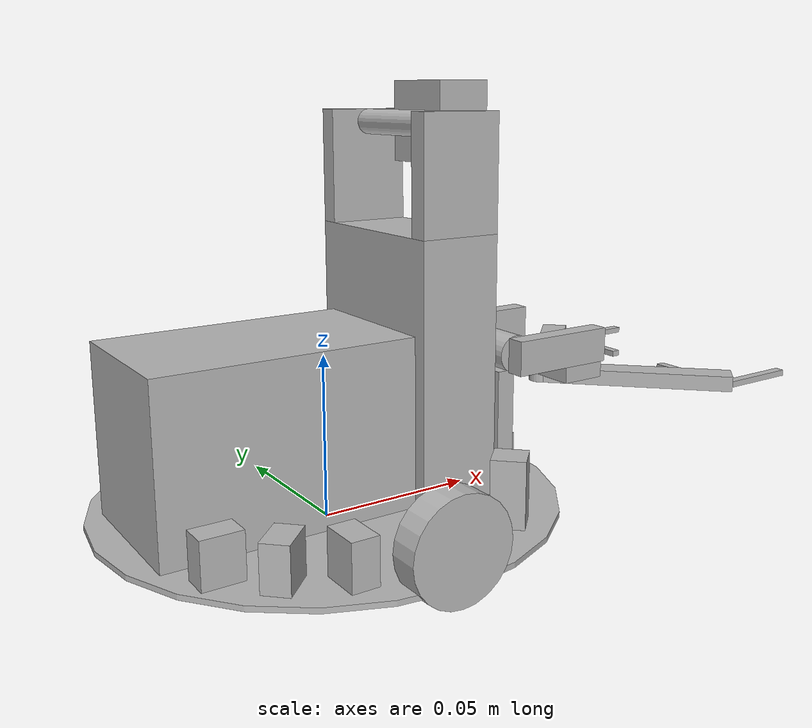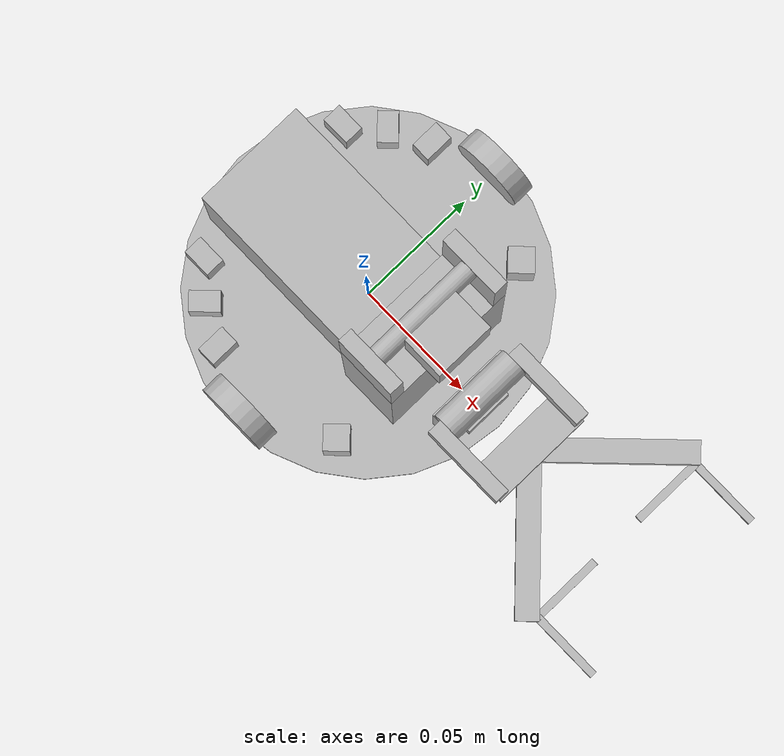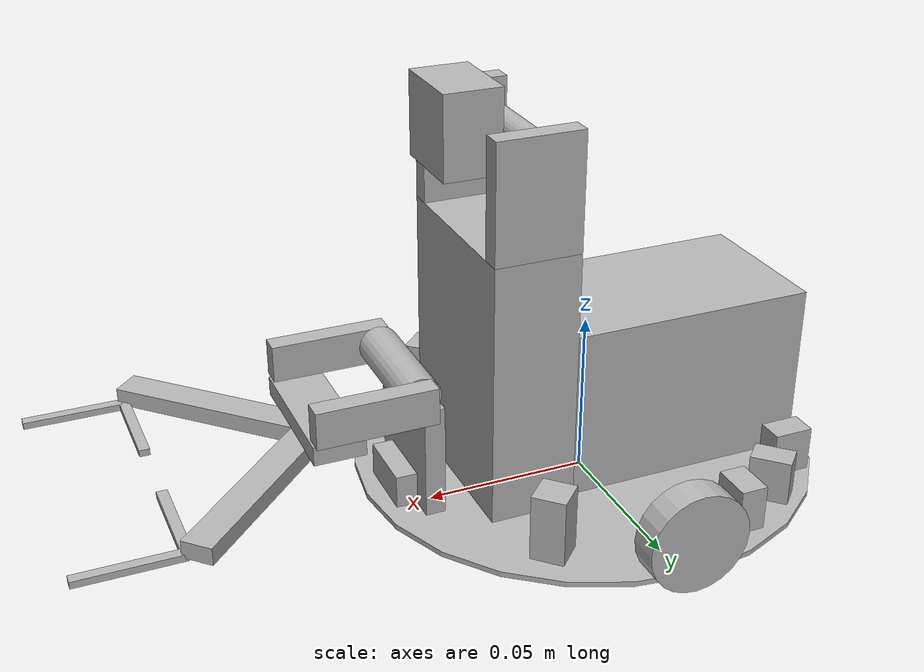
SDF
<?xml version='1.0'?>
<sdf version='1.4'>
    <model name="iti0201_robot">
      <static>false</static>

      <!-- LINK 1: Chassis, connect wheels and base to this. -->
      <link name="chassis">
        <pose>0 0 0.0152 0 0 0</pose>
      </link>

      <joint type="fixed" name="chassis_to_base">
        <pose>0 0 0 0 0 0</pose>
        <child>base</child>
        <parent>chassis</parent>
        <axis>
          <xyz>0 0 0</xyz>
        </axis>
      </joint>

      <!-- LINK 2: Base, contains caster wheels, base, brainbox and base for camera stand. -->
      <link name='base'>
        <sensor name="imu_sensor" type="imu">
          <always_on>true</always_on>
          <update_rate>100</update_rate>
          <visualize>true</visualize>
          <topic>__default_topic__</topic>
          <plugin filename="libgazebo_ros_imu_sensor.so" name="imu_plugin">
            <topicName>imu/raw</topicName>
            <bodyName>imu_link</bodyName>
            <updateRateHZ>10.0</updateRateHZ>
            <gaussianNoise>0.0</gaussianNoise>
            <xyzOffset>0 0 0</xyzOffset>
            <rpyOffset>0 0 0</rpyOffset>
            <frameName>imu_link</frameName>
          </plugin>
          <pose>0 0 0 0 0 0</pose>
        </sensor>
        <pose>0 0 .006 0 0 0</pose>

          <inertial>
            <mass>50</mass>
          </inertial>

          <collision name='base_collision'>
            <geometry>
              <cylinder>
                <radius>.069912</radius>
                <length>0.001591</length>
              </cylinder>
            </geometry>
          </collision>

          <visual name='base_visual'>
            <geometry>
              <cylinder>
                <radius>.069912</radius>
                <length>0.001591</length>
              </cylinder>
            </geometry>
          </visual>

          <collision name="brainbox_collision">
            <pose>-0.022 0 0.02641535 0 0 0</pose>
            <geometry>
              <box>
                <size>.077304 .0468221 .0512397</size>
              </box>
            </geometry>
          </collision>

          <visual name="brainbox_visual">
            <pose>-0.022 0 0.02641535 0 0 0</pose>
            <geometry>
              <box>
                <size>.077304 .0468221 .0512397</size>
              </box>
            </geometry>
          </visual>

          <collision name="camera_stand_collision">
            <pose>0.02940475 0 0.0402758 0 0 0</pose>
            <geometry>
              <box>
                <size>.0255021 .0553499 .0789606</size>
              </box>
            </geometry>
          </collision>

          <visual name="camera_stand_visual">
            <pose>0.02940475 0 0.0402758 0 0 0</pose>
            <geometry>
              <box>
                <size>.0255021 .0553499 .0789606</size>
              </box>
            </geometry>
          </visual>

          <collision name="camera_stand_right_wall_collision">
          <pose>0.02940475 -0.02467495 0.0970561 0 0 0</pose>
            <geometry>
              <box>
                <size>.0255021 .006 .0346</size>
              </box>
            </geometry>
          </collision>

          <visual name="camera_stand_right_wall_visual">
          <pose>0.02940475 -0.02467495 0.0970561 0 0 0</pose>
            <geometry>
              <box>
                <size>.0255021 .006 .0346</size>
              </box>
            </geometry>
          </visual>

          <collision name="camera_stand_left_wall_collision">
          <pose>0.02940475 0.02467495 0.0970561 0 0 0</pose>
            <geometry>
              <box>
                <size>.0255021 .006 .0346</size>
              </box>
            </geometry>
          </collision>

          <visual name="camera_stand_left_wall_visual">
          <pose>0.02940475 0.02467495 0.0970561 0 0 0</pose>
            <geometry>
              <box>
                <size>.0255021 .006 .0346</size>
              </box>
            </geometry>
          </visual>

          <collision name='front_caster_collision'>
            <pose>0.035 0 -0.001 0 0 0</pose>
            <geometry>
                <sphere>
                <radius>.004648</radius>
              </sphere>
            </geometry>

            <surface>
              <friction>
                <ode>
                  <mu>0</mu>
                  <mu2>0</mu2>
                  <slip1>1.0</slip1>
                  <slip2>1.0</slip2>
                </ode>
              </friction>
            </surface>
          </collision>

          <visual name='front_caster_visual'>
            <pose>0.035 0 -0.001 0 0 0</pose>
            <geometry>
              <sphere>
                <radius>.004648</radius>
              </sphere>
            </geometry>
          </visual>

          <collision name='rear_caster_collision'>
            <pose>-0.035 0 -0.001 0 0 0</pose>
            <geometry>
                <sphere>
                <radius>.004648</radius>
              </sphere>
            </geometry>

            <surface>
              <friction>
                <ode>
                  <mu>0</mu>
                  <mu2>0</mu2>
                  <slip1>1.0</slip1>
                  <slip2>1.0</slip2>
                </ode>
              </friction>
            </surface>
          </collision>

          <visual name='rear_caster_visual'>
            <pose>-0.035 0 -0.001 0 0 0</pose>
            <geometry>
              <sphere>
                <radius>.004648</radius>
              </sphere>
            </geometry>
          </visual>
      </link>

      <!-- LINKS 3-11: Infrareds. -->
      <link name="front_right_45deg_ir">
        <pose>0.0326151 -0.0470558 0.0167955 0 0 0.78535</pose>
        <collision name="collision">
          <geometry>
            <box>
              <size>.01 .01 .02</size>
            </box>
          </geometry>
        </collision>
        <visual name="visual">
          <geometry>
            <box>
              <size>.01 .01 .02</size>
            </box>
          </geometry>
        </visual>
        <sensor name="ir" type="ray">
          <pose>0 0 0 0 -0 -1.571</pose>
          <ray>
            <scan>
              <horizontal>
                <samples>100</samples>
                <resolution>1</resolution>
              </horizontal>
            </scan>
            <range>
              <min>0.01</min>
              <max>2.00</max>
              <resolution>0.1</resolution>
            </range>
          </ray>
          <always_on>1</always_on>
          <update_rate>30</update_rate>
          <visualize>true</visualize>
          <plugin name="ir_plugin" filename="libir_plugin.so">
            <topic>ir/front_right</topic>
          </plugin>
        </sensor>
      </link>

      <joint type="fixed" name="front_right_45deg_ir_to_base">
        <pose>0 0 0 0 0 0</pose>
        <child>front_right_45deg_ir</child>
        <parent>base</parent>
      </joint>

      <link name="front_middle_ir">
        <pose>0.059312 0 0.0117955 0 0 0</pose>
        <collision name="collision">
          <geometry>
            <box>
              <size>.01 .02 .01</size>
            </box>
          </geometry>
        </collision>
        <visual name="visual">
          <geometry>
            <box>
              <size>.01 .02 .01</size>
            </box>
          </geometry>
        </visual>
        <sensor name="ir" type="ray">
          <pose>0 0 0 0 -0 0</pose>
          <ray>
            <scan>
              <horizontal>
                <samples>100</samples>
                <resolution>1</resolution>
                <min_angle>-0.17</min_angle>
                <max_angle>0.17</max_angle>
              </horizontal>
            </scan>
            <range>
              <min>0.01</min>
              <max>2.00</max>
              <resolution>0.1</resolution>
            </range>
          </ray>
          <always_on>1</always_on>
          <update_rate>30</update_rate>
          <visualize>true</visualize>
          <plugin name="ir_plugin" filename="libir_plugin.so">
            <topic>ir/front_middle</topic>
          </plugin>
        </sensor>
      </link>

      <joint type="fixed" name="front_middle_ir_to_base">
        <pose>0 0 0 0 0 0</pose>
        <child>front_middle_ir</child>
        <parent>base</parent>
      </joint>

      <link name="front_left_45deg_ir">
        <pose>0.0326151 0.0470558 0.0167955 0 0 0.78535</pose>
        <collision name="collision">
          <geometry>
            <box>
              <size>.01 .01 .02</size>
            </box>
          </geometry>
        </collision>
        <visual name="visual">
          <geometry>
            <box>
              <size>.01 .01 .02</size>
            </box>
          </geometry>
        </visual>
        <sensor name="ir" type="ray">
          <pose>0 0 0 0 -0 0</pose>
          <ray>
            <scan>
              <horizontal>
                <samples>100</samples>
                <resolution>1</resolution>
              </horizontal>
            </scan>
            <range>
              <min>0.01</min>
              <max>2.00</max>
              <resolution>0.1</resolution>
            </range>
          </ray>
          <always_on>1</always_on>
          <update_rate>30</update_rate>
          <visualize>true</visualize>
          <plugin name="ir_plugin" filename="libir_plugin.so">
            <topic>ir/front_left</topic>
          </plugin>
        </sensor>
      </link>

      <joint type="fixed" name="front_left_45deg_ir_to_base">
        <pose>0 0 0 0 0 0</pose>
        <child>front_left_45deg_ir</child>
        <parent>base</parent>
      </joint>

      <link name="rear_right_90deg_ir">
        <pose>-0.0225688 -0.054749 0.014341 0 0 0</pose>
        <collision name="collision">
          <geometry>
            <box>
              <size>.008 .012 .0135</size>
            </box>
          </geometry>
        </collision>
        <visual name="visual">
          <geometry>
            <box>
              <size>.008 .012 .0135</size>
            </box>
          </geometry>
        </visual>
        <sensor name="ir" type="ray">
          <pose>0 0 0 0 -0 -1.571</pose>
          <ray>
            <scan>
              <horizontal>
                <samples>100</samples>
                <resolution>1</resolution>
              </horizontal>
            </scan>
            <range>
              <min>0.01</min>
              <max>2.00</max>
              <resolution>0.1</resolution>
            </range>
          </ray>
          <always_on>1</always_on>
          <update_rate>30</update_rate>
          <visualize>true</visualize>
          <plugin name="ir_plugin" filename="libir_plugin.so">
            <topic>ir/rear_right_90</topic>
          </plugin>
        </sensor>
      </link>

      <joint type="fixed" name="rear_right_90deg_ir_to_base">
        <pose>0 0 0 0 0 0</pose>
        <child>rear_right_90deg_ir</child>
        <parent>base</parent>
      </joint>

      <link name="rear_right_45deg_ir">
        <pose>-0.037845 -0.046812 0.014341 0 0 -0.78535</pose>
        <collision name="collision">
          <geometry>
            <box>
              <size>.008 .012 .0135</size>
            </box>
          </geometry>
        </collision>
        <visual name="visual">
          <geometry>
            <box>
              <size>.008 .012 .0135</size>
            </box>
          </geometry>
        </visual>
        <sensor name="ir" type="ray">
          <pose>0 0 0 0 -0 -1.571</pose>
          <ray>
            <scan>
              <horizontal>
                <samples>100</samples>
                <resolution>1</resolution>
              </horizontal>
            </scan>
            <range>
              <min>0.01</min>
              <max>2.00</max>
              <resolution>0.1</resolution>
            </range>
          </ray>
          <always_on>1</always_on>
          <update_rate>30</update_rate>
          <visualize>true</visualize>
          <plugin name="ir_plugin" filename="libir_plugin.so">
            <topic>ir/rear_right_45</topic>
          </plugin>
        </sensor>
      </link>

      <joint type="fixed" name="rear_right_45deg_ir_to_base">
        <pose>0 0 0 0 0 0</pose>
        <child>rear_right_45deg_ir</child>
        <parent>base</parent>
      </joint>

      <link name="rear_right_straight_ir">
        <pose>-0.0501109 -0.035473 0.014341 0 0 1.5707</pose>
        <collision name="collision">
          <geometry>
            <box>
              <size>.008 .012 .0135</size>
            </box>
          </geometry>
        </collision>
        <visual name="visual">
          <geometry>
            <box>
              <size>.008 .012 .0135</size>
            </box>
          </geometry>
        </visual>
        <sensor name="ir" type="ray">
          <pose>0 0 0 0 -0 1.571</pose>
          <ray>
            <scan>
              <horizontal>
                <samples>100</samples>
                <resolution>1</resolution>
              </horizontal>
            </scan>
            <range>
              <min>0.01</min>
              <max>2.00</max>
              <resolution>0.1</resolution>
            </range>
          </ray>
          <always_on>1</always_on>
          <update_rate>30</update_rate>
          <visualize>true</visualize>
          <plugin name="ir_plugin" filename="libir_plugin.so">
            <topic>ir/rear_right_0</topic>
          </plugin>
        </sensor>
      </link>

      <joint type="fixed" name="rear_right_straight_ir_to_base">
        <pose>0 0 0 0 0 0</pose>
        <child>rear_right_straight_ir</child>
        <parent>base</parent>
      </joint>

      <link name="rear_left_90deg_ir">
        <pose>-0.0225688 0.054749 0.014341 0 0 0</pose>
        <collision name="collision">
          <geometry>
            <box>
              <size>.008 .012 .0135</size>
            </box>
          </geometry>
        </collision>
        <visual name="visual">
          <geometry>
            <box>
              <size>.008 .012 .0135</size>
            </box>
          </geometry>
        </visual>
        <sensor name="ir" type="ray">
          <pose>0 0 0 0 -0 1.571</pose>
          <ray>
            <scan>
              <horizontal>
                <samples>100</samples>
                <resolution>1</resolution>
              </horizontal>
            </scan>
            <range>
              <min>0.01</min>
              <max>2.00</max>
              <resolution>0.1</resolution>
            </range>
          </ray>
          <always_on>1</always_on>
          <update_rate>30</update_rate>
          <visualize>true</visualize>
          <plugin name="ir_plugin" filename="libir_plugin.so">
            <topic>ir/rear_left_90</topic>
          </plugin>
        </sensor>
      </link>

      <joint type="fixed" name="rear_left_90deg_ir_to_base">
        <pose>0 0 0 0 0 0</pose>
        <child>rear_left_90deg_ir</child>
        <parent>base</parent>
      </joint>

      <link name="rear_left_45deg_ir">
        <pose>-0.037845 0.046812 0.014341 0 0 0.78535</pose>
        <collision name="collision">
          <geometry>
            <box>
              <size>.008 .012 .0135</size>
            </box>
          </geometry>
        </collision>
        <visual name="visual">
          <geometry>
            <box>
              <size>.008 .012 .0135</size>
            </box>
          </geometry>
        </visual>
        <sensor name="ir" type="ray">
          <pose>0 0 0 0 -0 1.571</pose>
          <ray>
            <scan>
              <horizontal>
                <samples>100</samples>
                <resolution>1</resolution>
              </horizontal>
            </scan>
            <range>
              <min>0.01</min>
              <max>2.00</max>
              <resolution>0.1</resolution>
            </range>
          </ray>
          <always_on>1</always_on>
          <update_rate>30</update_rate>
          <visualize>true</visualize>
          <plugin name="ir_plugin" filename="libir_plugin.so">
            <topic>ir/rear_left_45</topic>
          </plugin>
        </sensor>
      </link>

      <joint type="fixed" name="rear_left_45deg_ir_to_base">
        <pose>0 0 0 0 0 0</pose>
        <child>rear_left_45deg_ir</child>
        <parent>base</parent>
      </joint>

      <link name="rear_left_straight_ir">
        <pose>-0.0501109 0.035473 0.014341 0 0 1.5707</pose>
        <collision name="collision">
          <geometry>
            <box>
              <size>.008 .012 .0135</size>
            </box>
          </geometry>
        </collision>
        <visual name="visual">
          <geometry>
            <box>
              <size>.008 .012 .0135</size>
            </box>
          </geometry>
        </visual>
        <sensor name="ir" type="ray">
          <pose>0 0 0 0 -0 1.571</pose>
          <ray>
            <scan>
              <horizontal>
                <samples>100</samples>
                <resolution>1</resolution>
              </horizontal>
            </scan>
            <range>
              <min>0.01</min>
              <max>2.00</max>
              <resolution>0.1</resolution>
            </range>
          </ray>
          <always_on>1</always_on>
          <update_rate>30</update_rate>
          <visualize>true</visualize>
          <plugin name="ir_plugin" filename="libir_plugin.so">
            <topic>ir/rear_left_0</topic>
          </plugin>
        </sensor>
      </link>

      <joint type="fixed" name="rear_left_straight_ir_to_base">
        <pose>0 0 0 0 0 0</pose>
        <child>rear_left_straight_ir</child>
        <parent>base</parent>
      </joint>

      <!-- LINKS 12-17: Line following sensors. -->
      <link name="right_side_first_line_sensor_from_middle">
        <pose>-0.06289935 -0.005 0.0044545 0 0 0</pose>
        <collision name="collision">
          <geometry>
            <box>
              <size>.0025 .0035 .0015</size>
            </box>
          </geometry>
        </collision>
        <visual name="visual">
          <geometry>
            <box>
              <size>.0025 .0035 .0015</size>
            </box>
          </geometry>
        </visual>
        <sensor type="camera" name="line_sensor_camera1">
          <update_rate>30.0</update_rate>
          <pose>0 0 0 0 1.571 0</pose>
          <camera name="head">
            <horizontal_fov>0.4</horizontal_fov>
            <image>
              <width>48</width>
              <height>48</height>
              <format>L8</format>
            </image>
            <clip>
                <near>0.001</near>
                <far>0.031</far>
            </clip>
          </camera>
          <always_on>1</always_on>
          <update_rate>30</update_rate>
          <visualize>true</visualize>
          <plugin name="camera_controller" filename="libgazebo_ros_camera.so">
            <alwaysOn>true</alwaysOn>
            <updateRate>30.0</updateRate>
            <cameraName>/robot/line_sensor/right_first</cameraName>
            <imageTopicName>image_raw</imageTopicName>
            <cameraInfoTopicName>camera_info</cameraInfoTopicName>
            <frameName>camera_link</frameName>
            <hackBaseline>0.07</hackBaseline>
            <distortionK1>0.0</distortionK1>
            <distortionK2>0.0</distortionK2>
            <distortionK3>0.0</distortionK3>
            <distortionT1>0.0</distortionT1>
            <distortionT2>0.0</distortionT2>
          </plugin>
        </sensor>
      </link>

      <joint type="fixed" name="right_side_first_line_sensor_from_middle_to_base">
        <pose>0 0 0 0 0 0</pose>
        <child>right_side_first_line_sensor_from_middle</child>
        <parent>base</parent>
      </joint>

      <link name="left_side_first_line_sensor_from_middle">
        <pose>-0.06289935 0.005 0.0044545 0 0 0</pose>
        <collision name="collision">
          <geometry>
            <box>
              <size>.0025 .0035 .0015</size>
            </box>
          </geometry>
        </collision>
        <visual name="visual">
          <geometry>
            <box>
              <size>.0025 .0035 .0015</size>
            </box>
          </geometry>
        </visual>
        <sensor type="camera" name="line_sensor_camera2">
          <update_rate>30.0</update_rate>
          <pose>0 0 0 0 1.571 0</pose>
          <camera name="head">
            <horizontal_fov>0.4</horizontal_fov>
            <image>
              <width>48</width>
              <height>48</height>
              <format>L8</format>
            </image>
            <clip>
                <near>0.001</near>
                <far>0.031</far>
            </clip>
          </camera>
          <always_on>1</always_on>
          <update_rate>30</update_rate>
          <visualize>true</visualize>
          <plugin name="camera_controller" filename="libgazebo_ros_camera.so">
            <alwaysOn>true</alwaysOn>
            <updateRate>30.0</updateRate>
            <cameraName>/robot/line_sensor/left_first</cameraName>
            <imageTopicName>image_raw</imageTopicName>
            <cameraInfoTopicName>camera_info</cameraInfoTopicName>
            <frameName>camera_link</frameName>
            <hackBaseline>0.07</hackBaseline>
            <distortionK1>0.0</distortionK1>
            <distortionK2>0.0</distortionK2>
            <distortionK3>0.0</distortionK3>
            <distortionT1>0.0</distortionT1>
            <distortionT2>0.0</distortionT2>
          </plugin>
        </sensor>
      </link>

      <joint type="fixed" name="left_side_first_line_sensor_from_middle_to_base">
        <pose>0 0 0 0 0 0</pose>
        <child>left_side_first_line_sensor_from_middle</child>
        <parent>base</parent>
      </joint>

      <link name="right_side_second_line_sensor_from_middle">
        <pose>-0.06289935 -0.015 0.0044545 0 0 0</pose>
        <collision name="collision">
          <geometry>
            <box>
              <size>.0025 .0035 .0015</size>
            </box>
          </geometry>
        </collision>
        <visual name="visual">
          <geometry>
            <box>
              <size>.0025 .0035 .0015</size>
            </box>
          </geometry>
        </visual>
        <sensor type="camera" name="line_sensor_camera3">
          <update_rate>30.0</update_rate>
          <pose>0 0 0 0 1.571 0</pose>
          <camera name="head">
            <horizontal_fov>0.4</horizontal_fov>
            <image>
              <width>48</width>
              <height>48</height>
              <format>L8</format>
            </image>
            <clip>
                <near>0.001</near>
                <far>0.031</far>
            </clip>
          </camera>
          <always_on>1</always_on>
          <update_rate>30</update_rate>
          <visualize>true</visualize>
          <plugin name="camera_controller" filename="libgazebo_ros_camera.so">
            <alwaysOn>true</alwaysOn>
            <updateRate>30.0</updateRate>
            <cameraName>/robot/line_sensor/right_second</cameraName>
            <imageTopicName>image_raw</imageTopicName>
            <cameraInfoTopicName>camera_info</cameraInfoTopicName>
            <frameName>camera_link</frameName>
            <hackBaseline>0.07</hackBaseline>
            <distortionK1>0.0</distortionK1>
            <distortionK2>0.0</distortionK2>
            <distortionK3>0.0</distortionK3>
            <distortionT1>0.0</distortionT1>
            <distortionT2>0.0</distortionT2>
          </plugin>
        </sensor>
      </link>

      <joint type="fixed" name="right_side_second_line_sensor_from_middle_to_base">
        <pose>0 0 0 0 0 0</pose>
        <child>right_side_second_line_sensor_from_middle</child>
        <parent>base</parent>
      </joint>

      <link name="left_side_second_line_sensor_from_middle">
        <pose>-0.06289935 0.015 0.0044545 0 0 0</pose>
        <collision name="collision">
          <geometry>
            <box>
              <size>.0025 .0035 .0015</size>
            </box>
          </geometry>
        </collision>
        <visual name="visual">
          <geometry>
            <box>
              <size>.0025 .0035 .0015</size>
            </box>
          </geometry>
        </visual>
        <sensor type="camera" name="line_sensor_camera4">
          <update_rate>30.0</update_rate>
          <pose>0 0 0 0 1.571 0</pose>
          <camera name="head">
            <horizontal_fov>0.4</horizontal_fov>
            <image>
              <width>48</width>
              <height>48</height>
              <format>L8</format>
            </image>
            <clip>
                <near>0.001</near>
                <far>0.031</far>
            </clip>
          </camera>
          <always_on>1</always_on>
          <update_rate>30</update_rate>
          <visualize>true</visualize>
          <plugin name="camera_controller" filename="libgazebo_ros_camera.so">
            <alwaysOn>true</alwaysOn>
            <updateRate>30.0</updateRate>
            <cameraName>/robot/line_sensor/left_second</cameraName>
            <imageTopicName>image_raw</imageTopicName>
            <cameraInfoTopicName>camera_info</cameraInfoTopicName>
            <frameName>camera_link</frameName>
            <hackBaseline>0.07</hackBaseline>
            <distortionK1>0.0</distortionK1>
            <distortionK2>0.0</distortionK2>
            <distortionK3>0.0</distortionK3>
            <distortionT1>0.0</distortionT1>
            <distortionT2>0.0</distortionT2>
          </plugin>
        </sensor>
      </link>

      <joint type="fixed" name="left_side_second_line_sensor_from_middle_to_base">
        <pose>0 0 0 0 0 0</pose>
        <child>left_side_second_line_sensor_from_middle</child>
        <parent>base</parent>
      </joint>

      <link name="right_side_third_line_sensor_from_middle">
        <pose>-0.05410292 -0.035 0.0044545 0 0 0</pose>
        <collision name="collision">
          <geometry>
            <box>
              <size>.0025 .0035 .0015</size>
            </box>
          </geometry>
        </collision>
        <visual name="visual">
          <geometry>
            <box>
              <size>.0025 .0035 .0015</size>
            </box>
          </geometry>
        </visual>
        <sensor type="camera" name="line_sensor_camera5">
          <update_rate>30.0</update_rate>
          <pose>0 0 0 0 1.571 0</pose>
          <camera name="head">
            <horizontal_fov>0.4</horizontal_fov>
            <image>
              <width>48</width>
              <height>48</height>
              <format>L8</format>
            </image>
            <clip>
                <near>0.001</near>
                <far>0.031</far>
            </clip>
          </camera>
          <always_on>1</always_on>
          <update_rate>30</update_rate>
          <visualize>true</visualize>
          <plugin name="camera_controller" filename="libgazebo_ros_camera.so">
            <alwaysOn>true</alwaysOn>
            <updateRate>30.0</updateRate>
            <cameraName>/robot/line_sensor/right_third</cameraName>
            <imageTopicName>image_raw</imageTopicName>
            <cameraInfoTopicName>camera_info</cameraInfoTopicName>
            <frameName>camera_link</frameName>
            <hackBaseline>0.07</hackBaseline>
            <distortionK1>0.0</distortionK1>
            <distortionK2>0.0</distortionK2>
            <distortionK3>0.0</distortionK3>
            <distortionT1>0.0</distortionT1>
            <distortionT2>0.0</distortionT2>
          </plugin>
        </sensor>
      </link>

      <joint type="fixed" name="right_side_third_line_sensor_from_middle_to_base">
        <pose>0 0 0 0 0 0</pose>
        <child>right_side_third_line_sensor_from_middle</child>
        <parent>base</parent>
      </joint>

      <link name="left_side_third_line_sensor_from_middle">
        <pose>-0.05410292 0.035 0.0044545 0 0 0</pose>
        <collision name="collision">
          <geometry>
            <box>
              <size>.0025 .0035 .0015</size>
            </box>
          </geometry>
        </collision>
        <visual name="visual">
          <geometry>
            <box>
              <size>.0025 .0035 .0015</size>
            </box>
          </geometry>
        </visual>
        <sensor type="camera" name="line_sensor_camera6">
          <update_rate>30.0</update_rate>
          <pose>0 0 0 0 1.571 0</pose>
          <camera name="head">
            <horizontal_fov>0.4</horizontal_fov>
            <image>
              <width>48</width>
              <height>48</height>
              <format>L8</format>
            </image>
            <clip>
                <near>0.001</near>
                <far>0.031</far>
            </clip>
          </camera>
          <always_on>1</always_on>
          <update_rate>30</update_rate>
          <visualize>true</visualize>
          <plugin name="camera_controller" filename="libgazebo_ros_camera.so">
            <alwaysOn>true</alwaysOn>
            <updateRate>30.0</updateRate>
            <cameraName>/robot/line_sensor/left_third</cameraName>
            <imageTopicName>image_raw</imageTopicName>
            <cameraInfoTopicName>camera_info</cameraInfoTopicName>
            <frameName>camera_link</frameName>
            <hackBaseline>0.07</hackBaseline>
            <distortionK1>0.0</distortionK1>
            <distortionK2>0.0</distortionK2>
            <distortionK3>0.0</distortionK3>
            <distortionT1>0.0</distortionT1>
            <distortionT2>0.0</distortionT2>
          </plugin>
        </sensor>
      </link>

      <joint type="fixed" name="left_side_third_line_sensor_from_middle_to_base">
        <pose>0 0 0 0 0 0</pose>
        <child>left_side_third_line_sensor_from_middle</child>
        <parent>base</parent>
      </joint>

      <!-- LINKS 18-19: Camera. -->
      <link name="camera_stand_pole">
        <pose>0.02940475 0 0.1165341 0 1.5707 1.5707</pose>
        <collision name="collision">
          <geometry>
            <cylinder>
              <radius>.003822</radius>
              <length>.0433499</length>
            </cylinder>
          </geometry>
        </collision>
        <visual name="visual">
          <geometry>
            <cylinder>
              <radius>.003822</radius>
              <length>.0433499</length>
            </cylinder>
          </geometry>
        </visual>
      </link>

      <joint type="fixed" name="camera_stand_pole_to_base">
        <pose>0 0 0 0 0 0</pose>
        <child>camera_stand_pole</child>
        <parent>base</parent>
      </joint>

      <link name="camera">
        <pose>0.04140475 0 0.1168561 0 1.5707 0</pose>
        <collision name="collision">
          <geometry>
            <box>
              <size>.024 .024 .017</size>
            </box>
          </geometry>
        </collision>
        <visual name="visual">
          <geometry>
            <box>
              <size>.024 .024 .017</size>
            </box>
          </geometry>
        </visual>
        <sensor type="camera" name="camera">
          <pose>0 0 0 0 -1.571 0</pose>
          <update_rate>30.0</update_rate>
          <always_on>1</always_on>
          <visualize>true</visualize>
          <camera name="head">
            <horizontal_fov>1.3962634</horizontal_fov>
            <image>
              <width>800</width>
              <height>800</height>
              <format>R8G8B8</format>
            </image>
            <clip>
              <near>0.02</near>
              <far>300</far>
            </clip>
          </camera>

          <plugin name="camera_controller" filename="libgazebo_ros_camera.so">
            <alwaysOn>true</alwaysOn>
            <updateRate>0.0</updateRate>
            <cameraName>robot/camera</cameraName>
            <imageTopicName>image_raw</imageTopicName>
            <cameraInfoTopicName>camera_info</cameraInfoTopicName>
            <frameName>camera_link</frameName>
            <hackBaseline>0.07</hackBaseline>
            <distortionK1>0.0</distortionK1>
            <distortionK2>0.0</distortionK2>
            <distortionK3>0.0</distortionK3>
            <distortionT1>0.0</distortionT1>
            <distortionT2>0.0</distortionT2>
          </plugin>
        </sensor>
      </link>

      <joint type="fixed" name="camera">
        <pose>0 0 0 0 0 0</pose>
        <child>camera</child>
        <parent>camera_stand_pole</parent>
      </joint>

      <!-- LINKS 20-21: Wheels. -->
       <link name="right_wheel">
        <pose>0 -0.0655005 0.0152 0 1.5707 1.5707</pose>
        <collision name="collision">
          <geometry>
            <cylinder>
              <radius>.0152</radius>
              <length>.009</length>
            </cylinder>
          </geometry>

          <surface>
            <friction>
               <ode>
                  <!-- wheel friction coefficient -->
                  <mu>0.6</mu>
                  <!-- floor friction coefficient -->
                  <mu2>0.6</mu2>
               </ode>
            </friction>
          </surface>
        </collision>

        <inertial>
          <!-- don't know the real mass -->
          <mass>2</mass>
            <inertia>
              <!-- https://en.wikipedia.org/wiki/List_of_moments_of_inertia -->
              <ixx>0.00012902</ixx>
              <iyy>0.00012902</iyy>
              <izz>0.00023104</izz>
            </inertia>
        </inertial>

        <visual name="visual">
          <geometry>
            <cylinder>
              <radius>.0152</radius>
              <length>.009</length>
            </cylinder>
          </geometry>
        </visual>
      </link>

      <joint type="revolute" name="right_wheel_hinge">
        <pose>0 0 -0.03 0 0 0</pose>
        <child>right_wheel</child>
        <parent>chassis</parent>
        <axis>
          <xyz>0 1 0</xyz>
        </axis>
      </joint>

      <link name="left_wheel">
        <pose>0 0.0655005 0.0152 0 1.5707 1.5707</pose>
        <collision name="collision">
          <geometry>
            <cylinder>
              <radius>.0152</radius>
              <length>.009</length>
            </cylinder>
          </geometry>

          <surface>
            <friction>
               <ode>
                  <!-- wheel friction coefficient -->
                  <mu>0.6</mu>
                  <!-- floor friction coefficient -->
                  <mu2>0.6</mu2>
               </ode>
            </friction>
          </surface>
        </collision>

        <inertial>
          <!-- don't know the real mass -->
          <mass>2</mass>
            <inertia>
              <!-- https://en.wikipedia.org/wiki/List_of_moments_of_inertia -->
              <ixx>0.00012902</ixx>
              <iyy>0.00012902</iyy>
              <izz>0.00023104</izz>
            </inertia>
        </inertial>

        <visual name="visual">
          <geometry>
            <cylinder>
              <radius>.0152</radius>
              <length>.009</length>
            </cylinder>
          </geometry>
        </visual>
      </link>

      <joint type="revolute" name="left_wheel_hinge">
        <pose>0 0 0.03 0 0 0</pose>
        <child>left_wheel</child>
        <parent>chassis</parent>
        <axis>
          <xyz>0 1 0</xyz>
        </axis>
      </joint>

      <plugin name="wheel_plugin" filename="libwheel_plugin.so"/>

      <!-- LINKS 22-26: Grabber.
      TODO: inertia
      -->
      <link name="grabber_pole">

        <collision name="to_base">
        <pose>0.055 0 0.0235 0 0 0</pose>
          <geometry>
            <box>
              <size>.006 .034 .03455</size>
            </box>
          </geometry>
        </collision>

        <visual name="to_base">
        <pose>0.055 0 0.0235 0 0 0</pose>
          <geometry>
            <box>
              <size>.006 .034 .03455</size>
            </box>
          </geometry>
        </visual>

        <collision name="collision">
          <pose>0.058912 0 0.0455477 0 1.5707 1.5707</pose>
          <geometry>
            <cylinder>
              <radius>.006</radius>
              <length>.034</length>
            </cylinder>
          </geometry>
        </collision>

        <visual name="visual">
          <pose>0.058912 0 0.0455477 0 1.5707 1.5707</pose>
          <geometry>
            <cylinder>
              <radius>.006</radius>
              <length>.034</length>
            </cylinder>
          </geometry>
        </visual>
      </link>

      <joint type="fixed" name="grabber_pole">
        <pose>0 0 0 0 0 0</pose>
        <child>grabber_pole</child>
        <parent>base</parent>
      </joint>

      <link name="grabber_mount">
        <collision name="collision_left">
        <pose>0.073412 0.020 0.0455477 0 0 0</pose>
          <geometry>
            <box>
              <size>.035 .006 .011</size>
            </box>
          </geometry>
        </collision>

        <visual name="visual_left">
        <pose>0.073412 0.020 0.0455477 0 0 0</pose>
          <geometry>
            <box>
              <size>.035 .006 .011</size>
            </box>
          </geometry>
        </visual>

        <collision name="collision_right">
        <pose>0.073412 -0.020 0.0455477 0 0 0</pose>
          <geometry>
            <box>
              <size>.035 .006 .011</size>
            </box>
          </geometry>
        </collision>

        <visual name="visual_right">
        <pose>0.073412 -0.020 0.0455477 0 0 0</pose>
          <geometry>
            <box>
              <size>.035 .006 .011</size>
            </box>
          </geometry>
        </visual>

        <collision name="collision_under">
        <pose>0.083912 0 0.0369977 0 0 0</pose>
          <geometry>
            <box>
              <size>.015 .042 .0057</size>
            </box>
          </geometry>
        </collision>

        <visual name="visual_under">
        <pose>0.083912 0 0.0369977 0 0 0</pose>
          <geometry>
            <box>
              <size>.015 .042 .0057</size>
            </box>
          </geometry>
        </visual>

        <inertial>
          <!-- don't know the real mass -->
          <mass>2</mass>
            <inertia>
              <!-- https://en.wikipedia.org/wiki/List_of_moments_of_inertia -->
              <ixx>0.000337</ixx>
              <iyy>0.000493</iyy>
              <izz>0.000248</izz>
            </inertia>
        </inertial>
      </link>

      <!--
      TODO: revolute?
      -->
      <joint type="fixed" name="grabber_mount_to_pole">
        <pose>0 0 0 0 0 0</pose>
        <child>grabber_mount</child>
        <parent>grabber_pole</parent>
      </joint>

      <link name="grabber_arms_joint">
        <pose>0.083912 0 0.0319977 0 3.1414 0</pose>
        <collision name="collision">
          <geometry>
            <cylinder>
              <radius>.004</radius>
              <length>.005</length>
            </cylinder>
          </geometry>
        </collision>
        <visual name="visual">
          <geometry>
            <cylinder>
              <radius>.004</radius>
              <length>.005</length>
            </cylinder>
          </geometry>
        </visual>
      </link>

      <joint type="fixed" name="grabber_arms_joint_to_grabber_mount">
        <pose>0 0 0 0 0 0</pose>
        <child>grabber_arms_joint</child>
        <parent>grabber_mount</parent>
      </joint>

      <link name="grabber_arm_left">
        <collision name="main_arm_collision_l">
        <pose>0.106912 0.022 0.0319977 0 0 0.78535</pose>
          <geometry>
            <box>
              <size>.06213 .009 .005</size>
            </box>
          </geometry>
        </collision>
        <visual name="main_arm_visual_l">
        <pose>0.106912 0.022 0.0319977 0 0 0.78535</pose>
          <geometry>
            <box>
              <size>.06213 .009 .005</size>
            </box>
          </geometry>
        </visual>

        <collision name="small_arm_collision_l_f">
        <pose>0.145 0.040 0.0294977 0 0 0</pose>
          <geometry>
            <box>
              <size>.029 .003 .002</size>
            </box>
          </geometry>
        </collision>
        <visual name="small_arm_visual_l_f">
        <pose>0.145 0.040 0.0294977 0 0 0</pose>
          <geometry>
            <box>
              <size>.029 .003 .002</size>
            </box>
          </geometry>
        </visual>

        <collision name="small_arm_collision_l_b">
        <pose>0.1305 0.0255 0.0294977 0 0 -1.5707</pose>
          <geometry>
            <box>
              <size>.029 .003 .002</size>
            </box>
          </geometry>
        </collision>
        <visual name="small_arm_visual_l_b">
        <pose>0.1305 0.0255 0.0294977 0 0 -1.5707</pose>
          <geometry>
            <box>
              <size>.029 .003 .002</size>
            </box>
          </geometry>
        </visual>

        <inertial>
          <!-- don't know the real mass -->
          <mass>1</mass>
            <inertia>
              <!-- https://en.wikipedia.org/wiki/List_of_moments_of_inertia -->
              <ixx>0.000322</ixx>
              <iyy>0.000327</iyy>
              <izz>0.000088</izz>
            </inertia>
        </inertial>
      </link>

      <!--
      TODO: revolute?
      -->
      <joint type="fixed" name="grabber_arm_left_to_grabber_joint">
        <pose>0 0 0 0 0 0</pose>
        <child>grabber_arm_left</child>
        <parent>grabber_arms_joint</parent>
      </joint>

      <link name="grabber_arm_right">
        <collision name="main_arm_collision_r">
        <pose>0.106912 -0.022 0.0319977 0 0 -0.78535</pose>
          <geometry>
            <box>
              <size>.06213 .009 .005</size>
            </box>
          </geometry>
        </collision>
        <visual name="main_arm_visual_r">
        <pose>0.106912 -0.022 0.0319977 0 0 -0.78535</pose>
          <geometry>
            <box>
              <size>.06213 .009 .005</size>
            </box>
          </geometry>
        </visual>

        <collision name="small_arm_collision_r_f">
        <pose>0.145 -0.040 0.0294977 0 0 0</pose>
          <geometry>
            <box>
              <size>.029 .003 .002</size>
            </box>
          </geometry>
        </collision>
        <visual name="small_arm_visual_r_f">
        <pose>0.145 -0.040 0.0294977 0 0 0</pose>
          <geometry>
            <box>
              <size>.029 .003 .002</size>
            </box>
          </geometry>
        </visual>

        <collision name="small_arm_collision_r_b">
          <pose>0.1305 -0.0255 0.0294977 0 0 -1.5707</pose>
          <geometry>
            <box>
              <size>.029 .003 .002</size>
            </box>
          </geometry>
        </collision>
        <visual name="small_arm_visual_r_b">
        <pose>0.1305 -0.0255 0.0294977 0 0 -1.5707</pose>
          <geometry>
            <box>
              <size>.029 .003 .002</size>
            </box>
          </geometry>
        </visual>

        <inertial>
          <!-- don't know the real mass -->
          <mass>1</mass>
            <inertia>
              <!-- https://en.wikipedia.org/wiki/List_of_moments_of_inertia -->
              <ixx>0.000322</ixx>
              <iyy>0.000327</iyy>
              <izz>0.000088</izz>
            </inertia>
        </inertial>
      </link>

      <!--
      TODO: revolute?
      -->
      <joint type="fixed" name="grabber_arm_right_to_grabber_joint">
        <pose>0 0 0 0 0 0</pose>
        <child>grabber_arm_right</child>
        <parent>grabber_arms_joint</parent>
      </joint>
  </model>
</sdf>
